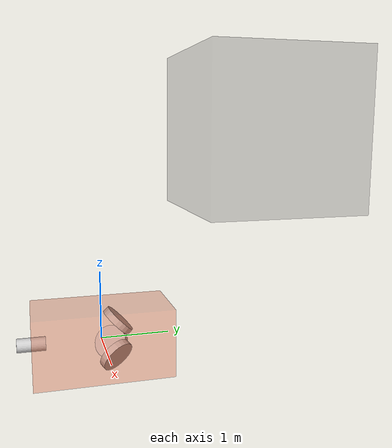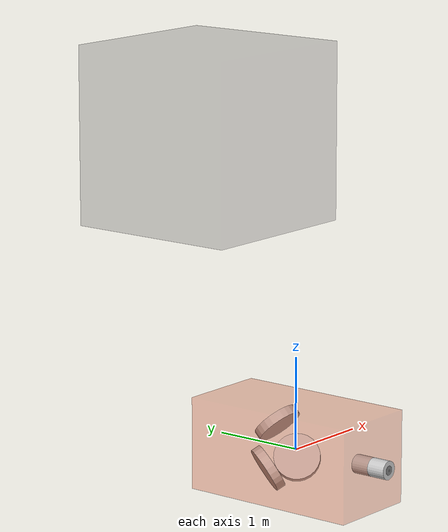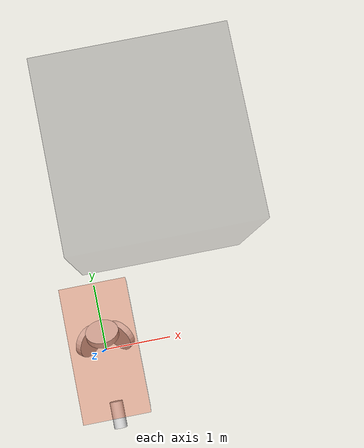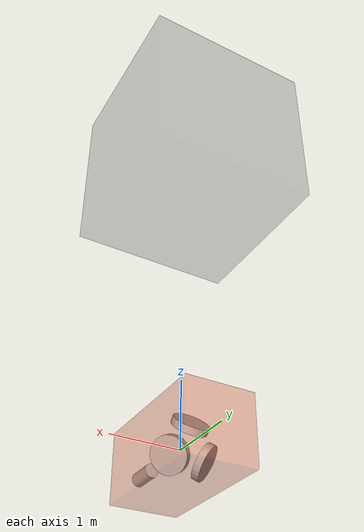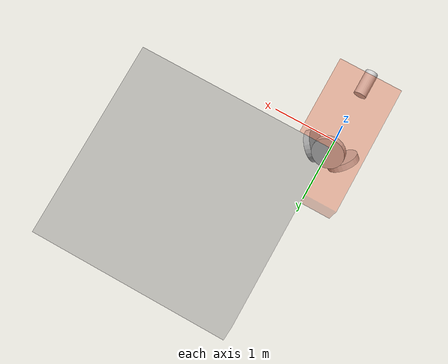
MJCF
<?xml version="1.0" encoding="UTF-8"?>
<mujoco model="satellite_chaser">
    <compiler coordinate="local" inertiafromgeom="true" />
    <asset>
        <texture name="skybox" type="skybox" builtin="gradient" rgb1=".4 .6 .8" rgb2="0 0 0"
            width="800" height="800" mark="random" markrgb="1 1 1" />
    </asset>
    <option gravity="0 0 0" timestep="0.001" />
    <default>
        <joint />
        <default class="dhinge">
            <joint armature="0" damping="0.1" limited="true" range="-20 20" />
        </default>
        <default class="gyros">
            <joint armature="0" damping="0.1" limited="false" />
        </default>
    </default>
    <option integrator="RK4" timestep="0.01" />
    <worldbody>
        <body name="chaser" pos="0 0 0">
            <camera name="chaser_3rd" mode="fixed" pos="0 -3 1" xyaxes="1 0 0 0 0 1" fovy="90" />
            <joint axis="1 0 0" type="free" />
            <geom size="0.5 1 0.5" type="box" rgba=".8 .2 0 0.3" mass="10" />
            <body name="cy" pos="0 -1 0">
                <joint class="dhinge" axis="1 0 0" name="motor_joint_vertical" />
                <joint class="dhinge" axis="0 0 1" name="motor_joint_horizontal" />
                <geom name="cy" type="cylinder" pos="0 0 0" size="0.1 0.2" rgba=".8 .8 .8 1"
                    quat="0.7071 0.7071 0 0  " mass="0.5" />
                <body name="motor" pos="0 -0.2 0" quat="0.7071 -0.7071 0 0">
                    <geom size=".05 .0025" type="cylinder" mass="0" />
                    <site name="motor_push" pos="0 0 0" size="0.01" type="cylinder" />
                </body>
            </body>
            <body name="gyros" pos="0 0 0"
                euler="45 135 0 ">
                <geom name="gyro_case" type="box" pos="0 0 0" size="0.2 0.2 0.2" rgba=".8 .8 .8 0.5"
                    mass="0" />

                <body pos="0 0.35 0">
                    <joint axis="0 1 0" class="gyros" name="gyro_1_joint" type="hinge" />
                    <geom name="gyro1" type="cylinder" pos="0 0 0" size="0.25 0.05"
                        rgba=".8 .8 .8 1"
                        quat="0.7071 0.7071 0 0" mass="0.5" />
                </body>
                <body pos="0.35 0 0">
                    <joint axis="1 0 0" class="gyros" name="gyro_2_joint" type="hinge" />
                    <geom name="gyro2" type="cylinder" pos="0 0 0" size="0.25 0.05"
                        rgba=".8 .8 .8 1"
                        quat="0.7071  0 0.7071 0" mass="0.5" />
                </body>
                <body pos="0 0 0.35">
                    <joint axis="0 0 1" class="gyros" name="gyro_3_joint" type="hinge" />
                    <geom name="gyro3" type="cylinder" pos="0 0 0" size="0.25 0.05"
                        rgba=".8 .8 .8 1"
                        quat="0.7071 0 0  0.7071 " mass="0.5" />
                </body>
            </body>
        </body>
        <body name="target" pos="1 2 3">
            <camera name="track_chaser" mode="targetbodycom" target="chaser" pos="0 0 0" fovy="90" />
            <joint type="free" />
            <geom size="1 1 1" type="box" rgba="0 0 0 0.1" />
        </body>
    </worldbody>
    <actuator>
        <motor ctrllimited="true" ctrlrange="0 1" gear="0. 0. 0.1 0. 0. 0." site="motor_push"
        />
        <velocity ctrllimited="true" gear="0.05" ctrlrange="-1 1" joint="motor_joint_vertical" />
        <velocity ctrllimited="true" gear="0.05" ctrlrange="-1 1"
            joint="motor_joint_horizontal" />

        <motor ctrllimited="true" ctrlrange="-1.0 1.0" gear="1." joint="gyro_1_joint" />
        <motor ctrllimited="true" ctrlrange="-1.0 1.0" gear="1." joint="gyro_2_joint" />
        <motor ctrllimited="true" ctrlrange="-1.0 1.0" gear="1." joint="gyro_3_joint" />
    </actuator>
</mujoco>
